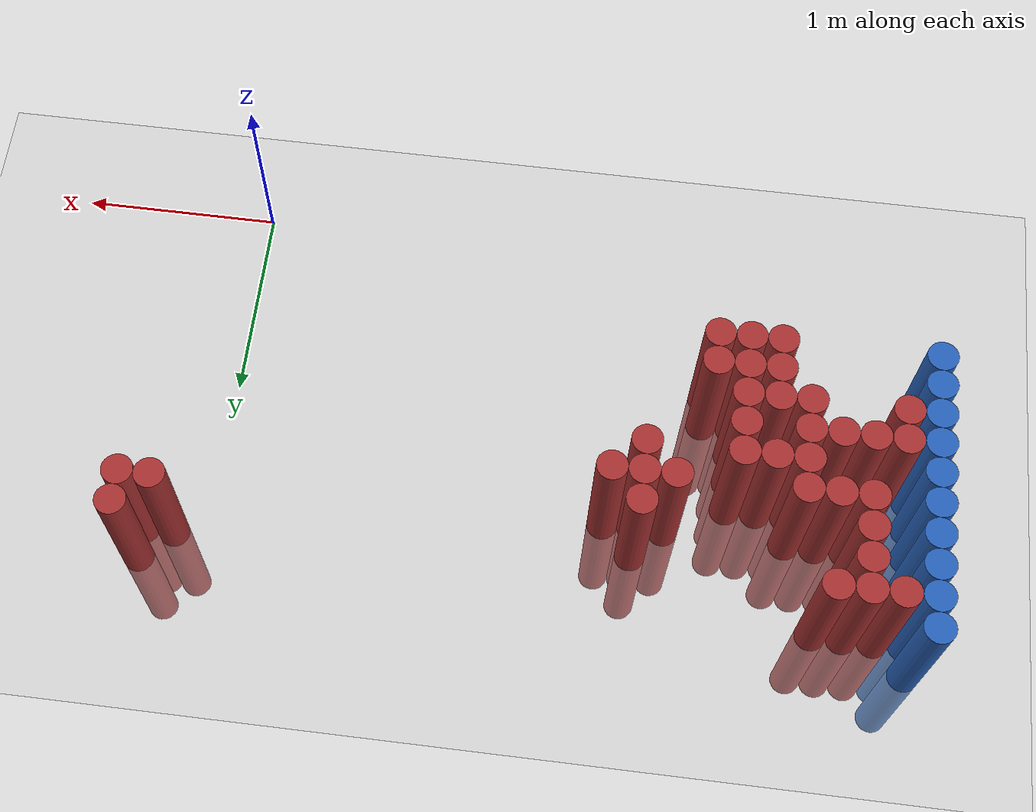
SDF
<sdf version="1.6">
 <world name="default">
  <model name="ground_plane">
   <static>1</static>
   <link name="link">
    <collision name="collision">
     <geometry><plane><normal>0 0 1</normal><size>100 100</size></plane></geometry>
     <surface><friction><ode><mu>100</mu><mu2>50</mu2></ode></friction></surface>
    </collision>
    <visual name="visual">
     <cast_shadows>0</cast_shadows>
     <geometry><plane><normal>0 0 1</normal><size>100 100</size></plane></geometry>
     <material>
      <script><uri>file://media/materials/scripts/gazebo.material</uri><name>Gazebo/Grey</name></script>
     </material>
    </visual>
   </link>
  </model>
  <model name="unit_cylinder_125">
   <static>1</static>
   <pose>-3.425000 0.775000 0.000000 0.000000 0.000000 0.000000</pose>
   <link name="link">
    <inertial>
     <mass>1</mass>
     <inertia><ixx>0.145833</ixx><ixy>0</ixy><ixz>0</ixz><iyy>0.145833</iyy><iyz>0</iyz><izz>0.125</izz></inertia>
    </inertial>
    <collision name="collision">
     <geometry><cylinder><radius>0.075000</radius><length>1.5</length></cylinder></geometry>
    </collision>
    <visual name="visual">
     <geometry><cylinder><radius>0.075000</radius><length>1.5</length></cylinder></geometry>
     <material>
      <ambient>0.152000 0.379000 0.720000 1</ambient>
      <diffuse>0.152000 0.379000 0.720000 1</diffuse>
     </material>
     <material>
      <script><name>Gazebo/Grey</name><uri>file://media/materials/scripts/gazebo.material</uri></script>
     </material>
    </visual>
   </link>
  </model>
  <model name="unit_cylinder_127">
   <static>1</static>
   <pose>-3.425000 0.925000 0.000000 0.000000 0.000000 0.000000</pose>
   <link name="link">
    <inertial>
     <mass>1</mass>
     <inertia><ixx>0.145833</ixx><ixy>0</ixy><ixz>0</ixz><iyy>0.145833</iyy><iyz>0</iyz><izz>0.125</izz></inertia>
    </inertial>
    <collision name="collision">
     <geometry><cylinder><radius>0.075000</radius><length>1.5</length></cylinder></geometry>
    </collision>
    <visual name="visual">
     <geometry><cylinder><radius>0.075000</radius><length>1.5</length></cylinder></geometry>
     <material>
      <ambient>0.152000 0.379000 0.720000 1</ambient>
      <diffuse>0.152000 0.379000 0.720000 1</diffuse>
     </material>
     <material>
      <script><name>Gazebo/Grey</name><uri>file://media/materials/scripts/gazebo.material</uri></script>
     </material>
    </visual>
   </link>
  </model>
  <model name="unit_cylinder_129">
   <static>1</static>
   <pose>-3.425000 1.075000 0.000000 0.000000 0.000000 0.000000</pose>
   <link name="link">
    <inertial>
     <mass>1</mass>
     <inertia><ixx>0.145833</ixx><ixy>0</ixy><ixz>0</ixz><iyy>0.145833</iyy><iyz>0</iyz><izz>0.125</izz></inertia>
    </inertial>
    <collision name="collision">
     <geometry><cylinder><radius>0.075000</radius><length>1.5</length></cylinder></geometry>
    </collision>
    <visual name="visual">
     <geometry><cylinder><radius>0.075000</radius><length>1.5</length></cylinder></geometry>
     <material>
      <ambient>0.152000 0.379000 0.720000 1</ambient>
      <diffuse>0.152000 0.379000 0.720000 1</diffuse>
     </material>
     <material>
      <script><name>Gazebo/Grey</name><uri>file://media/materials/scripts/gazebo.material</uri></script>
     </material>
    </visual>
   </link>
  </model>
  <model name="unit_cylinder_131">
   <static>1</static>
   <pose>-3.425000 1.225000 0.000000 0.000000 0.000000 0.000000</pose>
   <link name="link">
    <inertial>
     <mass>1</mass>
     <inertia><ixx>0.145833</ixx><ixy>0</ixy><ixz>0</ixz><iyy>0.145833</iyy><iyz>0</iyz><izz>0.125</izz></inertia>
    </inertial>
    <collision name="collision">
     <geometry><cylinder><radius>0.075000</radius><length>1.5</length></cylinder></geometry>
    </collision>
    <visual name="visual">
     <geometry><cylinder><radius>0.075000</radius><length>1.5</length></cylinder></geometry>
     <material>
      <ambient>0.152000 0.379000 0.720000 1</ambient>
      <diffuse>0.152000 0.379000 0.720000 1</diffuse>
     </material>
     <material>
      <script><name>Gazebo/Grey</name><uri>file://media/materials/scripts/gazebo.material</uri></script>
     </material>
    </visual>
   </link>
  </model>
  <model name="unit_cylinder_133">
   <static>1</static>
   <pose>-3.425000 1.375000 0.000000 0.000000 0.000000 0.000000</pose>
   <link name="link">
    <inertial>
     <mass>1</mass>
     <inertia><ixx>0.145833</ixx><ixy>0</ixy><ixz>0</ixz><iyy>0.145833</iyy><iyz>0</iyz><izz>0.125</izz></inertia>
    </inertial>
    <collision name="collision">
     <geometry><cylinder><radius>0.075000</radius><length>1.5</length></cylinder></geometry>
    </collision>
    <visual name="visual">
     <geometry><cylinder><radius>0.075000</radius><length>1.5</length></cylinder></geometry>
     <material>
      <ambient>0.152000 0.379000 0.720000 1</ambient>
      <diffuse>0.152000 0.379000 0.720000 1</diffuse>
     </material>
     <material>
      <script><name>Gazebo/Grey</name><uri>file://media/materials/scripts/gazebo.material</uri></script>
     </material>
    </visual>
   </link>
  </model>
  <model name="unit_cylinder_135">
   <static>1</static>
   <pose>-3.425000 1.525000 0.000000 0.000000 0.000000 0.000000</pose>
   <link name="link">
    <inertial>
     <mass>1</mass>
     <inertia><ixx>0.145833</ixx><ixy>0</ixy><ixz>0</ixz><iyy>0.145833</iyy><iyz>0</iyz><izz>0.125</izz></inertia>
    </inertial>
    <collision name="collision">
     <geometry><cylinder><radius>0.075000</radius><length>1.5</length></cylinder></geometry>
    </collision>
    <visual name="visual">
     <geometry><cylinder><radius>0.075000</radius><length>1.5</length></cylinder></geometry>
     <material>
      <ambient>0.152000 0.379000 0.720000 1</ambient>
      <diffuse>0.152000 0.379000 0.720000 1</diffuse>
     </material>
     <material>
      <script><name>Gazebo/Grey</name><uri>file://media/materials/scripts/gazebo.material</uri></script>
     </material>
    </visual>
   </link>
  </model>
  <model name="unit_cylinder_137">
   <static>1</static>
   <pose>-3.425000 1.675000 0.000000 0.000000 0.000000 0.000000</pose>
   <link name="link">
    <inertial>
     <mass>1</mass>
     <inertia><ixx>0.145833</ixx><ixy>0</ixy><ixz>0</ixz><iyy>0.145833</iyy><iyz>0</iyz><izz>0.125</izz></inertia>
    </inertial>
    <collision name="collision">
     <geometry><cylinder><radius>0.075000</radius><length>1.5</length></cylinder></geometry>
    </collision>
    <visual name="visual">
     <geometry><cylinder><radius>0.075000</radius><length>1.5</length></cylinder></geometry>
     <material>
      <ambient>0.152000 0.379000 0.720000 1</ambient>
      <diffuse>0.152000 0.379000 0.720000 1</diffuse>
     </material>
     <material>
      <script><name>Gazebo/Grey</name><uri>file://media/materials/scripts/gazebo.material</uri></script>
     </material>
    </visual>
   </link>
  </model>
  <model name="unit_cylinder_139">
   <static>1</static>
   <pose>-3.425000 1.825000 0.000000 0.000000 0.000000 0.000000</pose>
   <link name="link">
    <inertial>
     <mass>1</mass>
     <inertia><ixx>0.145833</ixx><ixy>0</ixy><ixz>0</ixz><iyy>0.145833</iyy><iyz>0</iyz><izz>0.125</izz></inertia>
    </inertial>
    <collision name="collision">
     <geometry><cylinder><radius>0.075000</radius><length>1.5</length></cylinder></geometry>
    </collision>
    <visual name="visual">
     <geometry><cylinder><radius>0.075000</radius><length>1.5</length></cylinder></geometry>
     <material>
      <ambient>0.152000 0.379000 0.720000 1</ambient>
      <diffuse>0.152000 0.379000 0.720000 1</diffuse>
     </material>
     <material>
      <script><name>Gazebo/Grey</name><uri>file://media/materials/scripts/gazebo.material</uri></script>
     </material>
    </visual>
   </link>
  </model>
  <model name="unit_cylinder_141">
   <static>1</static>
   <pose>-3.425000 1.975000 0.000000 0.000000 0.000000 0.000000</pose>
   <link name="link">
    <inertial>
     <mass>1</mass>
     <inertia><ixx>0.145833</ixx><ixy>0</ixy><ixz>0</ixz><iyy>0.145833</iyy><iyz>0</iyz><izz>0.125</izz></inertia>
    </inertial>
    <collision name="collision">
     <geometry><cylinder><radius>0.075000</radius><length>1.5</length></cylinder></geometry>
    </collision>
    <visual name="visual">
     <geometry><cylinder><radius>0.075000</radius><length>1.5</length></cylinder></geometry>
     <material>
      <ambient>0.152000 0.379000 0.720000 1</ambient>
      <diffuse>0.152000 0.379000 0.720000 1</diffuse>
     </material>
     <material>
      <script><name>Gazebo/Grey</name><uri>file://media/materials/scripts/gazebo.material</uri></script>
     </material>
    </visual>
   </link>
  </model>
  <model name="unit_cylinder_143">
   <static>1</static>
   <pose>-3.425000 2.125000 0.000000 0.000000 0.000000 0.000000</pose>
   <link name="link">
    <inertial>
     <mass>1</mass>
     <inertia><ixx>0.145833</ixx><ixy>0</ixy><ixz>0</ixz><iyy>0.145833</iyy><iyz>0</iyz><izz>0.125</izz></inertia>
    </inertial>
    <collision name="collision">
     <geometry><cylinder><radius>0.075000</radius><length>1.5</length></cylinder></geometry>
    </collision>
    <visual name="visual">
     <geometry><cylinder><radius>0.075000</radius><length>1.5</length></cylinder></geometry>
     <material>
      <ambient>0.152000 0.379000 0.720000 1</ambient>
      <diffuse>0.152000 0.379000 0.720000 1</diffuse>
     </material>
     <material>
      <script><name>Gazebo/Grey</name><uri>file://media/materials/scripts/gazebo.material</uri></script>
     </material>
    </visual>
   </link>
  </model>
  <model name="unit_cylinder_226">
   <static>1</static>
   <pose>-3.425000 0.775000 0.000000 0.000000 0.000000 0.000000</pose>
   <link name="link">
    <inertial>
     <mass>1</mass>
     <inertia><ixx>0.145833</ixx><ixy>0</ixy><ixz>0</ixz><iyy>0.145833</iyy><iyz>0</iyz><izz>0.125</izz></inertia>
    </inertial>
    <collision name="collision">
     <geometry><cylinder><radius>0.075000</radius><length>1.5</length></cylinder></geometry>
    </collision>
    <visual name="visual">
     <geometry><cylinder><radius>0.075000</radius><length>1.5</length></cylinder></geometry>
     <material>
      <ambient>0.152000 0.379000 0.720000 1</ambient>
      <diffuse>0.152000 0.379000 0.720000 1</diffuse>
     </material>
     <material>
      <script><name>Gazebo/Grey</name><uri>file://media/materials/scripts/gazebo.material</uri></script>
     </material>
    </visual>
   </link>
  </model>
  <model name="unit_cylinder_227">
   <static>1</static>
   <pose>-3.425000 0.925000 0.000000 0.000000 0.000000 0.000000</pose>
   <link name="link">
    <inertial>
     <mass>1</mass>
     <inertia><ixx>0.145833</ixx><ixy>0</ixy><ixz>0</ixz><iyy>0.145833</iyy><iyz>0</iyz><izz>0.125</izz></inertia>
    </inertial>
    <collision name="collision">
     <geometry><cylinder><radius>0.075000</radius><length>1.5</length></cylinder></geometry>
    </collision>
    <visual name="visual">
     <geometry><cylinder><radius>0.075000</radius><length>1.5</length></cylinder></geometry>
     <material>
      <ambient>0.152000 0.379000 0.720000 1</ambient>
      <diffuse>0.152000 0.379000 0.720000 1</diffuse>
     </material>
     <material>
      <script><name>Gazebo/Grey</name><uri>file://media/materials/scripts/gazebo.material</uri></script>
     </material>
    </visual>
   </link>
  </model>
  <model name="unit_cylinder_228">
   <static>1</static>
   <pose>-3.425000 1.075000 0.000000 0.000000 0.000000 0.000000</pose>
   <link name="link">
    <inertial>
     <mass>1</mass>
     <inertia><ixx>0.145833</ixx><ixy>0</ixy><ixz>0</ixz><iyy>0.145833</iyy><iyz>0</iyz><izz>0.125</izz></inertia>
    </inertial>
    <collision name="collision">
     <geometry><cylinder><radius>0.075000</radius><length>1.5</length></cylinder></geometry>
    </collision>
    <visual name="visual">
     <geometry><cylinder><radius>0.075000</radius><length>1.5</length></cylinder></geometry>
     <material>
      <ambient>0.152000 0.379000 0.720000 1</ambient>
      <diffuse>0.152000 0.379000 0.720000 1</diffuse>
     </material>
     <material>
      <script><name>Gazebo/Grey</name><uri>file://media/materials/scripts/gazebo.material</uri></script>
     </material>
    </visual>
   </link>
  </model>
  <model name="unit_cylinder_229">
   <static>1</static>
   <pose>-3.425000 1.225000 0.000000 0.000000 0.000000 0.000000</pose>
   <link name="link">
    <inertial>
     <mass>1</mass>
     <inertia><ixx>0.145833</ixx><ixy>0</ixy><ixz>0</ixz><iyy>0.145833</iyy><iyz>0</iyz><izz>0.125</izz></inertia>
    </inertial>
    <collision name="collision">
     <geometry><cylinder><radius>0.075000</radius><length>1.5</length></cylinder></geometry>
    </collision>
    <visual name="visual">
     <geometry><cylinder><radius>0.075000</radius><length>1.5</length></cylinder></geometry>
     <material>
      <ambient>0.152000 0.379000 0.720000 1</ambient>
      <diffuse>0.152000 0.379000 0.720000 1</diffuse>
     </material>
     <material>
      <script><name>Gazebo/Grey</name><uri>file://media/materials/scripts/gazebo.material</uri></script>
     </material>
    </visual>
   </link>
  </model>
  <model name="unit_cylinder_230">
   <static>1</static>
   <pose>-3.425000 1.375000 0.000000 0.000000 0.000000 0.000000</pose>
   <link name="link">
    <inertial>
     <mass>1</mass>
     <inertia><ixx>0.145833</ixx><ixy>0</ixy><ixz>0</ixz><iyy>0.145833</iyy><iyz>0</iyz><izz>0.125</izz></inertia>
    </inertial>
    <collision name="collision">
     <geometry><cylinder><radius>0.075000</radius><length>1.5</length></cylinder></geometry>
    </collision>
    <visual name="visual">
     <geometry><cylinder><radius>0.075000</radius><length>1.5</length></cylinder></geometry>
     <material>
      <ambient>0.152000 0.379000 0.720000 1</ambient>
      <diffuse>0.152000 0.379000 0.720000 1</diffuse>
     </material>
     <material>
      <script><name>Gazebo/Grey</name><uri>file://media/materials/scripts/gazebo.material</uri></script>
     </material>
    </visual>
   </link>
  </model>
  <model name="unit_cylinder_231">
   <static>1</static>
   <pose>-3.425000 1.525000 0.000000 0.000000 0.000000 0.000000</pose>
   <link name="link">
    <inertial>
     <mass>1</mass>
     <inertia><ixx>0.145833</ixx><ixy>0</ixy><ixz>0</ixz><iyy>0.145833</iyy><iyz>0</iyz><izz>0.125</izz></inertia>
    </inertial>
    <collision name="collision">
     <geometry><cylinder><radius>0.075000</radius><length>1.5</length></cylinder></geometry>
    </collision>
    <visual name="visual">
     <geometry><cylinder><radius>0.075000</radius><length>1.5</length></cylinder></geometry>
     <material>
      <ambient>0.152000 0.379000 0.720000 1</ambient>
      <diffuse>0.152000 0.379000 0.720000 1</diffuse>
     </material>
     <material>
      <script><name>Gazebo/Grey</name><uri>file://media/materials/scripts/gazebo.material</uri></script>
     </material>
    </visual>
   </link>
  </model>
  <model name="unit_cylinder_232">
   <static>1</static>
   <pose>-3.425000 1.675000 0.000000 0.000000 0.000000 0.000000</pose>
   <link name="link">
    <inertial>
     <mass>1</mass>
     <inertia><ixx>0.145833</ixx><ixy>0</ixy><ixz>0</ixz><iyy>0.145833</iyy><iyz>0</iyz><izz>0.125</izz></inertia>
    </inertial>
    <collision name="collision">
     <geometry><cylinder><radius>0.075000</radius><length>1.5</length></cylinder></geometry>
    </collision>
    <visual name="visual">
     <geometry><cylinder><radius>0.075000</radius><length>1.5</length></cylinder></geometry>
     <material>
      <ambient>0.152000 0.379000 0.720000 1</ambient>
      <diffuse>0.152000 0.379000 0.720000 1</diffuse>
     </material>
     <material>
      <script><name>Gazebo/Grey</name><uri>file://media/materials/scripts/gazebo.material</uri></script>
     </material>
    </visual>
   </link>
  </model>
  <model name="unit_cylinder_233">
   <static>1</static>
   <pose>-3.425000 1.825000 0.000000 0.000000 0.000000 0.000000</pose>
   <link name="link">
    <inertial>
     <mass>1</mass>
     <inertia><ixx>0.145833</ixx><ixy>0</ixy><ixz>0</ixz><iyy>0.145833</iyy><iyz>0</iyz><izz>0.125</izz></inertia>
    </inertial>
    <collision name="collision">
     <geometry><cylinder><radius>0.075000</radius><length>1.5</length></cylinder></geometry>
    </collision>
    <visual name="visual">
     <geometry><cylinder><radius>0.075000</radius><length>1.5</length></cylinder></geometry>
     <material>
      <ambient>0.152000 0.379000 0.720000 1</ambient>
      <diffuse>0.152000 0.379000 0.720000 1</diffuse>
     </material>
     <material>
      <script><name>Gazebo/Grey</name><uri>file://media/materials/scripts/gazebo.material</uri></script>
     </material>
    </visual>
   </link>
  </model>
  <model name="unit_cylinder_234">
   <static>1</static>
   <pose>-3.425000 1.975000 0.000000 0.000000 0.000000 0.000000</pose>
   <link name="link">
    <inertial>
     <mass>1</mass>
     <inertia><ixx>0.145833</ixx><ixy>0</ixy><ixz>0</ixz><iyy>0.145833</iyy><iyz>0</iyz><izz>0.125</izz></inertia>
    </inertial>
    <collision name="collision">
     <geometry><cylinder><radius>0.075000</radius><length>1.5</length></cylinder></geometry>
    </collision>
    <visual name="visual">
     <geometry><cylinder><radius>0.075000</radius><length>1.5</length></cylinder></geometry>
     <material>
      <ambient>0.152000 0.379000 0.720000 1</ambient>
      <diffuse>0.152000 0.379000 0.720000 1</diffuse>
     </material>
     <material>
      <script><name>Gazebo/Grey</name><uri>file://media/materials/scripts/gazebo.material</uri></script>
     </material>
    </visual>
   </link>
  </model>
  <model name="unit_cylinder_266">
   <static>1</static>
   <pose>-3.275000 1.075000 0.000000 0.000000 0.000000 0.000000</pose>
   <link name="link">
    <inertial>
     <mass>1</mass>
     <inertia><ixx>0.145833</ixx><ixy>0</ixy><ixz>0</ixz><iyy>0.145833</iyy><iyz>0</iyz><izz>0.125</izz></inertia>
    </inertial>
    <collision name="collision">
     <geometry><cylinder><radius>0.075000</radius><length>1.5</length></cylinder></geometry>
    </collision>
    <visual name="visual">
     <geometry><cylinder><radius>0.075000</radius><length>1.5</length></cylinder></geometry>
     <material>
      <ambient>0.648000 0.192000 0.192000 1</ambient>
      <diffuse>0.648000 0.192000 0.192000 1</diffuse>
     </material>
     <material>
      <script><name>Gazebo/Grey</name><uri>file://media/materials/scripts/gazebo.material</uri></script>
     </material>
    </visual>
   </link>
  </model>
  <model name="unit_cylinder_267">
   <static>1</static>
   <pose>-3.275000 1.225000 0.000000 0.000000 0.000000 0.000000</pose>
   <link name="link">
    <inertial>
     <mass>1</mass>
     <inertia><ixx>0.145833</ixx><ixy>0</ixy><ixz>0</ixz><iyy>0.145833</iyy><iyz>0</iyz><izz>0.125</izz></inertia>
    </inertial>
    <collision name="collision">
     <geometry><cylinder><radius>0.075000</radius><length>1.5</length></cylinder></geometry>
    </collision>
    <visual name="visual">
     <geometry><cylinder><radius>0.075000</radius><length>1.5</length></cylinder></geometry>
     <material>
      <ambient>0.648000 0.192000 0.192000 1</ambient>
      <diffuse>0.648000 0.192000 0.192000 1</diffuse>
     </material>
     <material>
      <script><name>Gazebo/Grey</name><uri>file://media/materials/scripts/gazebo.material</uri></script>
     </material>
    </visual>
   </link>
  </model>
  <model name="unit_cylinder_268">
   <static>1</static>
   <pose>-3.275000 1.975000 0.000000 0.000000 0.000000 0.000000</pose>
   <link name="link">
    <inertial>
     <mass>1</mass>
     <inertia><ixx>0.145833</ixx><ixy>0</ixy><ixz>0</ixz><iyy>0.145833</iyy><iyz>0</iyz><izz>0.125</izz></inertia>
    </inertial>
    <collision name="collision">
     <geometry><cylinder><radius>0.075000</radius><length>1.5</length></cylinder></geometry>
    </collision>
    <visual name="visual">
     <geometry><cylinder><radius>0.075000</radius><length>1.5</length></cylinder></geometry>
     <material>
      <ambient>0.648000 0.192000 0.192000 1</ambient>
      <diffuse>0.648000 0.192000 0.192000 1</diffuse>
     </material>
     <material>
      <script><name>Gazebo/Grey</name><uri>file://media/materials/scripts/gazebo.material</uri></script>
     </material>
    </visual>
   </link>
  </model>
  <model name="unit_cylinder_278">
   <static>1</static>
   <pose>-3.125000 1.225000 0.000000 0.000000 0.000000 0.000000</pose>
   <link name="link">
    <inertial>
     <mass>1</mass>
     <inertia><ixx>0.145833</ixx><ixy>0</ixy><ixz>0</ixz><iyy>0.145833</iyy><iyz>0</iyz><izz>0.125</izz></inertia>
    </inertial>
    <collision name="collision">
     <geometry><cylinder><radius>0.075000</radius><length>1.5</length></cylinder></geometry>
    </collision>
    <visual name="visual">
     <geometry><cylinder><radius>0.075000</radius><length>1.5</length></cylinder></geometry>
     <material>
      <ambient>0.648000 0.192000 0.192000 1</ambient>
      <diffuse>0.648000 0.192000 0.192000 1</diffuse>
     </material>
     <material>
      <script><name>Gazebo/Grey</name><uri>file://media/materials/scripts/gazebo.material</uri></script>
     </material>
    </visual>
   </link>
  </model>
  <model name="unit_cylinder_279">
   <static>1</static>
   <pose>-3.125000 1.525000 0.000000 0.000000 0.000000 0.000000</pose>
   <link name="link">
    <inertial>
     <mass>1</mass>
     <inertia><ixx>0.145833</ixx><ixy>0</ixy><ixz>0</ixz><iyy>0.145833</iyy><iyz>0</iyz><izz>0.125</izz></inertia>
    </inertial>
    <collision name="collision">
     <geometry><cylinder><radius>0.075000</radius><length>1.5</length></cylinder></geometry>
    </collision>
    <visual name="visual">
     <geometry><cylinder><radius>0.075000</radius><length>1.5</length></cylinder></geometry>
     <material>
      <ambient>0.648000 0.192000 0.192000 1</ambient>
      <diffuse>0.648000 0.192000 0.192000 1</diffuse>
     </material>
     <material>
      <script><name>Gazebo/Grey</name><uri>file://media/materials/scripts/gazebo.material</uri></script>
     </material>
    </visual>
   </link>
  </model>
  <model name="unit_cylinder_280">
   <static>1</static>
   <pose>-3.125000 1.675000 0.000000 0.000000 0.000000 0.000000</pose>
   <link name="link">
    <inertial>
     <mass>1</mass>
     <inertia><ixx>0.145833</ixx><ixy>0</ixy><ixz>0</ixz><iyy>0.145833</iyy><iyz>0</iyz><izz>0.125</izz></inertia>
    </inertial>
    <collision name="collision">
     <geometry><cylinder><radius>0.075000</radius><length>1.5</length></cylinder></geometry>
    </collision>
    <visual name="visual">
     <geometry><cylinder><radius>0.075000</radius><length>1.5</length></cylinder></geometry>
     <material>
      <ambient>0.648000 0.192000 0.192000 1</ambient>
      <diffuse>0.648000 0.192000 0.192000 1</diffuse>
     </material>
     <material>
      <script><name>Gazebo/Grey</name><uri>file://media/materials/scripts/gazebo.material</uri></script>
     </material>
    </visual>
   </link>
  </model>
  <model name="unit_cylinder_281">
   <static>1</static>
   <pose>-3.125000 1.825000 0.000000 0.000000 0.000000 0.000000</pose>
   <link name="link">
    <inertial>
     <mass>1</mass>
     <inertia><ixx>0.145833</ixx><ixy>0</ixy><ixz>0</ixz><iyy>0.145833</iyy><iyz>0</iyz><izz>0.125</izz></inertia>
    </inertial>
    <collision name="collision">
     <geometry><cylinder><radius>0.075000</radius><length>1.5</length></cylinder></geometry>
    </collision>
    <visual name="visual">
     <geometry><cylinder><radius>0.075000</radius><length>1.5</length></cylinder></geometry>
     <material>
      <ambient>0.648000 0.192000 0.192000 1</ambient>
      <diffuse>0.648000 0.192000 0.192000 1</diffuse>
     </material>
     <material>
      <script><name>Gazebo/Grey</name><uri>file://media/materials/scripts/gazebo.material</uri></script>
     </material>
    </visual>
   </link>
  </model>
  <model name="unit_cylinder_282">
   <static>1</static>
   <pose>-3.125000 1.975000 0.000000 0.000000 0.000000 0.000000</pose>
   <link name="link">
    <inertial>
     <mass>1</mass>
     <inertia><ixx>0.145833</ixx><ixy>0</ixy><ixz>0</ixz><iyy>0.145833</iyy><iyz>0</iyz><izz>0.125</izz></inertia>
    </inertial>
    <collision name="collision">
     <geometry><cylinder><radius>0.075000</radius><length>1.5</length></cylinder></geometry>
    </collision>
    <visual name="visual">
     <geometry><cylinder><radius>0.075000</radius><length>1.5</length></cylinder></geometry>
     <material>
      <ambient>0.648000 0.192000 0.192000 1</ambient>
      <diffuse>0.648000 0.192000 0.192000 1</diffuse>
     </material>
     <material>
      <script><name>Gazebo/Grey</name><uri>file://media/materials/scripts/gazebo.material</uri></script>
     </material>
    </visual>
   </link>
  </model>
  <model name="unit_cylinder_284">
   <static>1</static>
   <pose>-2.975000 1.225000 0.000000 0.000000 0.000000 0.000000</pose>
   <link name="link">
    <inertial>
     <mass>1</mass>
     <inertia><ixx>0.145833</ixx><ixy>0</ixy><ixz>0</ixz><iyy>0.145833</iyy><iyz>0</iyz><izz>0.125</izz></inertia>
    </inertial>
    <collision name="collision">
     <geometry><cylinder><radius>0.075000</radius><length>1.5</length></cylinder></geometry>
    </collision>
    <visual name="visual">
     <geometry><cylinder><radius>0.075000</radius><length>1.5</length></cylinder></geometry>
     <material>
      <ambient>0.648000 0.192000 0.192000 1</ambient>
      <diffuse>0.648000 0.192000 0.192000 1</diffuse>
     </material>
     <material>
      <script><name>Gazebo/Grey</name><uri>file://media/materials/scripts/gazebo.material</uri></script>
     </material>
    </visual>
   </link>
  </model>
  <model name="unit_cylinder_285">
   <static>1</static>
   <pose>-2.975000 1.525000 0.000000 0.000000 0.000000 0.000000</pose>
   <link name="link">
    <inertial>
     <mass>1</mass>
     <inertia><ixx>0.145833</ixx><ixy>0</ixy><ixz>0</ixz><iyy>0.145833</iyy><iyz>0</iyz><izz>0.125</izz></inertia>
    </inertial>
    <collision name="collision">
     <geometry><cylinder><radius>0.075000</radius><length>1.5</length></cylinder></geometry>
    </collision>
    <visual name="visual">
     <geometry><cylinder><radius>0.075000</radius><length>1.5</length></cylinder></geometry>
     <material>
      <ambient>0.648000 0.192000 0.192000 1</ambient>
      <diffuse>0.648000 0.192000 0.192000 1</diffuse>
     </material>
     <material>
      <script><name>Gazebo/Grey</name><uri>file://media/materials/scripts/gazebo.material</uri></script>
     </material>
    </visual>
   </link>
  </model>
  <model name="unit_cylinder_286">
   <static>1</static>
   <pose>-2.975000 1.975000 0.000000 0.000000 0.000000 0.000000</pose>
   <link name="link">
    <inertial>
     <mass>1</mass>
     <inertia><ixx>0.145833</ixx><ixy>0</ixy><ixz>0</ixz><iyy>0.145833</iyy><iyz>0</iyz><izz>0.125</izz></inertia>
    </inertial>
    <collision name="collision">
     <geometry><cylinder><radius>0.075000</radius><length>1.5</length></cylinder></geometry>
    </collision>
    <visual name="visual">
     <geometry><cylinder><radius>0.075000</radius><length>1.5</length></cylinder></geometry>
     <material>
      <ambient>0.648000 0.192000 0.192000 1</ambient>
      <diffuse>0.648000 0.192000 0.192000 1</diffuse>
     </material>
     <material>
      <script><name>Gazebo/Grey</name><uri>file://media/materials/scripts/gazebo.material</uri></script>
     </material>
    </visual>
   </link>
  </model>
  <model name="unit_cylinder_288">
   <static>1</static>
   <pose>-2.825000 1.075000 0.000000 0.000000 0.000000 0.000000</pose>
   <link name="link">
    <inertial>
     <mass>1</mass>
     <inertia><ixx>0.145833</ixx><ixy>0</ixy><ixz>0</ixz><iyy>0.145833</iyy><iyz>0</iyz><izz>0.125</izz></inertia>
    </inertial>
    <collision name="collision">
     <geometry><cylinder><radius>0.075000</radius><length>1.5</length></cylinder></geometry>
    </collision>
    <visual name="visual">
     <geometry><cylinder><radius>0.075000</radius><length>1.5</length></cylinder></geometry>
     <material>
      <ambient>0.648000 0.192000 0.192000 1</ambient>
      <diffuse>0.648000 0.192000 0.192000 1</diffuse>
     </material>
     <material>
      <script><name>Gazebo/Grey</name><uri>file://media/materials/scripts/gazebo.material</uri></script>
     </material>
    </visual>
   </link>
  </model>
  <model name="unit_cylinder_289">
   <static>1</static>
   <pose>-2.825000 1.225000 0.000000 0.000000 0.000000 0.000000</pose>
   <link name="link">
    <inertial>
     <mass>1</mass>
     <inertia><ixx>0.145833</ixx><ixy>0</ixy><ixz>0</ixz><iyy>0.145833</iyy><iyz>0</iyz><izz>0.125</izz></inertia>
    </inertial>
    <collision name="collision">
     <geometry><cylinder><radius>0.075000</radius><length>1.5</length></cylinder></geometry>
    </collision>
    <visual name="visual">
     <geometry><cylinder><radius>0.075000</radius><length>1.5</length></cylinder></geometry>
     <material>
      <ambient>0.648000 0.192000 0.192000 1</ambient>
      <diffuse>0.648000 0.192000 0.192000 1</diffuse>
     </material>
     <material>
      <script><name>Gazebo/Grey</name><uri>file://media/materials/scripts/gazebo.material</uri></script>
     </material>
    </visual>
   </link>
  </model>
  <model name="unit_cylinder_290">
   <static>1</static>
   <pose>-2.825000 1.375000 0.000000 0.000000 0.000000 0.000000</pose>
   <link name="link">
    <inertial>
     <mass>1</mass>
     <inertia><ixx>0.145833</ixx><ixy>0</ixy><ixz>0</ixz><iyy>0.145833</iyy><iyz>0</iyz><izz>0.125</izz></inertia>
    </inertial>
    <collision name="collision">
     <geometry><cylinder><radius>0.075000</radius><length>1.5</length></cylinder></geometry>
    </collision>
    <visual name="visual">
     <geometry><cylinder><radius>0.075000</radius><length>1.5</length></cylinder></geometry>
     <material>
      <ambient>0.648000 0.192000 0.192000 1</ambient>
      <diffuse>0.648000 0.192000 0.192000 1</diffuse>
     </material>
     <material>
      <script><name>Gazebo/Grey</name><uri>file://media/materials/scripts/gazebo.material</uri></script>
     </material>
    </visual>
   </link>
  </model>
  <model name="unit_cylinder_291">
   <static>1</static>
   <pose>-2.825000 1.525000 0.000000 0.000000 0.000000 0.000000</pose>
   <link name="link">
    <inertial>
     <mass>1</mass>
     <inertia><ixx>0.145833</ixx><ixy>0</ixy><ixz>0</ixz><iyy>0.145833</iyy><iyz>0</iyz><izz>0.125</izz></inertia>
    </inertial>
    <collision name="collision">
     <geometry><cylinder><radius>0.075000</radius><length>1.5</length></cylinder></geometry>
    </collision>
    <visual name="visual">
     <geometry><cylinder><radius>0.075000</radius><length>1.5</length></cylinder></geometry>
     <material>
      <ambient>0.648000 0.192000 0.192000 1</ambient>
      <diffuse>0.648000 0.192000 0.192000 1</diffuse>
     </material>
     <material>
      <script><name>Gazebo/Grey</name><uri>file://media/materials/scripts/gazebo.material</uri></script>
     </material>
    </visual>
   </link>
  </model>
  <model name="unit_cylinder_295">
   <static>1</static>
   <pose>-2.675000 0.775000 0.000000 0.000000 0.000000 0.000000</pose>
   <link name="link">
    <inertial>
     <mass>1</mass>
     <inertia><ixx>0.145833</ixx><ixy>0</ixy><ixz>0</ixz><iyy>0.145833</iyy><iyz>0</iyz><izz>0.125</izz></inertia>
    </inertial>
    <collision name="collision">
     <geometry><cylinder><radius>0.075000</radius><length>1.5</length></cylinder></geometry>
    </collision>
    <visual name="visual">
     <geometry><cylinder><radius>0.075000</radius><length>1.5</length></cylinder></geometry>
     <material>
      <ambient>0.648000 0.192000 0.192000 1</ambient>
      <diffuse>0.648000 0.192000 0.192000 1</diffuse>
     </material>
     <material>
      <script><name>Gazebo/Grey</name><uri>file://media/materials/scripts/gazebo.material</uri></script>
     </material>
    </visual>
   </link>
  </model>
  <model name="unit_cylinder_296">
   <static>1</static>
   <pose>-2.675000 0.925000 0.000000 0.000000 0.000000 0.000000</pose>
   <link name="link">
    <inertial>
     <mass>1</mass>
     <inertia><ixx>0.145833</ixx><ixy>0</ixy><ixz>0</ixz><iyy>0.145833</iyy><iyz>0</iyz><izz>0.125</izz></inertia>
    </inertial>
    <collision name="collision">
     <geometry><cylinder><radius>0.075000</radius><length>1.5</length></cylinder></geometry>
    </collision>
    <visual name="visual">
     <geometry><cylinder><radius>0.075000</radius><length>1.5</length></cylinder></geometry>
     <material>
      <ambient>0.648000 0.192000 0.192000 1</ambient>
      <diffuse>0.648000 0.192000 0.192000 1</diffuse>
     </material>
     <material>
      <script><name>Gazebo/Grey</name><uri>file://media/materials/scripts/gazebo.material</uri></script>
     </material>
    </visual>
   </link>
  </model>
  <model name="unit_cylinder_297">
   <static>1</static>
   <pose>-2.675000 1.075000 0.000000 0.000000 0.000000 0.000000</pose>
   <link name="link">
    <inertial>
     <mass>1</mass>
     <inertia><ixx>0.145833</ixx><ixy>0</ixy><ixz>0</ixz><iyy>0.145833</iyy><iyz>0</iyz><izz>0.125</izz></inertia>
    </inertial>
    <collision name="collision">
     <geometry><cylinder><radius>0.075000</radius><length>1.5</length></cylinder></geometry>
    </collision>
    <visual name="visual">
     <geometry><cylinder><radius>0.075000</radius><length>1.5</length></cylinder></geometry>
     <material>
      <ambient>0.648000 0.192000 0.192000 1</ambient>
      <diffuse>0.648000 0.192000 0.192000 1</diffuse>
     </material>
     <material>
      <script><name>Gazebo/Grey</name><uri>file://media/materials/scripts/gazebo.material</uri></script>
     </material>
    </visual>
   </link>
  </model>
  <model name="unit_cylinder_298">
   <static>1</static>
   <pose>-2.675000 1.375000 0.000000 0.000000 0.000000 0.000000</pose>
   <link name="link">
    <inertial>
     <mass>1</mass>
     <inertia><ixx>0.145833</ixx><ixy>0</ixy><ixz>0</ixz><iyy>0.145833</iyy><iyz>0</iyz><izz>0.125</izz></inertia>
    </inertial>
    <collision name="collision">
     <geometry><cylinder><radius>0.075000</radius><length>1.5</length></cylinder></geometry>
    </collision>
    <visual name="visual">
     <geometry><cylinder><radius>0.075000</radius><length>1.5</length></cylinder></geometry>
     <material>
      <ambient>0.648000 0.192000 0.192000 1</ambient>
      <diffuse>0.648000 0.192000 0.192000 1</diffuse>
     </material>
     <material>
      <script><name>Gazebo/Grey</name><uri>file://media/materials/scripts/gazebo.material</uri></script>
     </material>
    </visual>
   </link>
  </model>
  <model name="unit_cylinder_308">
   <static>1</static>
   <pose>-2.525000 0.775000 0.000000 0.000000 0.000000 0.000000</pose>
   <link name="link">
    <inertial>
     <mass>1</mass>
     <inertia><ixx>0.145833</ixx><ixy>0</ixy><ixz>0</ixz><iyy>0.145833</iyy><iyz>0</iyz><izz>0.125</izz></inertia>
    </inertial>
    <collision name="collision">
     <geometry><cylinder><radius>0.075000</radius><length>1.5</length></cylinder></geometry>
    </collision>
    <visual name="visual">
     <geometry><cylinder><radius>0.075000</radius><length>1.5</length></cylinder></geometry>
     <material>
      <ambient>0.648000 0.192000 0.192000 1</ambient>
      <diffuse>0.648000 0.192000 0.192000 1</diffuse>
     </material>
     <material>
      <script><name>Gazebo/Grey</name><uri>file://media/materials/scripts/gazebo.material</uri></script>
     </material>
    </visual>
   </link>
  </model>
  <model name="unit_cylinder_309">
   <static>1</static>
   <pose>-2.525000 0.925000 0.000000 0.000000 0.000000 0.000000</pose>
   <link name="link">
    <inertial>
     <mass>1</mass>
     <inertia><ixx>0.145833</ixx><ixy>0</ixy><ixz>0</ixz><iyy>0.145833</iyy><iyz>0</iyz><izz>0.125</izz></inertia>
    </inertial>
    <collision name="collision">
     <geometry><cylinder><radius>0.075000</radius><length>1.5</length></cylinder></geometry>
    </collision>
    <visual name="visual">
     <geometry><cylinder><radius>0.075000</radius><length>1.5</length></cylinder></geometry>
     <material>
      <ambient>0.648000 0.192000 0.192000 1</ambient>
      <diffuse>0.648000 0.192000 0.192000 1</diffuse>
     </material>
     <material>
      <script><name>Gazebo/Grey</name><uri>file://media/materials/scripts/gazebo.material</uri></script>
     </material>
    </visual>
   </link>
  </model>
  <model name="unit_cylinder_310">
   <static>1</static>
   <pose>-2.525000 1.075000 0.000000 0.000000 0.000000 0.000000</pose>
   <link name="link">
    <inertial>
     <mass>1</mass>
     <inertia><ixx>0.145833</ixx><ixy>0</ixy><ixz>0</ixz><iyy>0.145833</iyy><iyz>0</iyz><izz>0.125</izz></inertia>
    </inertial>
    <collision name="collision">
     <geometry><cylinder><radius>0.075000</radius><length>1.5</length></cylinder></geometry>
    </collision>
    <visual name="visual">
     <geometry><cylinder><radius>0.075000</radius><length>1.5</length></cylinder></geometry>
     <material>
      <ambient>0.648000 0.192000 0.192000 1</ambient>
      <diffuse>0.648000 0.192000 0.192000 1</diffuse>
     </material>
     <material>
      <script><name>Gazebo/Grey</name><uri>file://media/materials/scripts/gazebo.material</uri></script>
     </material>
    </visual>
   </link>
  </model>
  <model name="unit_cylinder_311">
   <static>1</static>
   <pose>-2.525000 1.225000 0.000000 0.000000 0.000000 0.000000</pose>
   <link name="link">
    <inertial>
     <mass>1</mass>
     <inertia><ixx>0.145833</ixx><ixy>0</ixy><ixz>0</ixz><iyy>0.145833</iyy><iyz>0</iyz><izz>0.125</izz></inertia>
    </inertial>
    <collision name="collision">
     <geometry><cylinder><radius>0.075000</radius><length>1.5</length></cylinder></geometry>
    </collision>
    <visual name="visual">
     <geometry><cylinder><radius>0.075000</radius><length>1.5</length></cylinder></geometry>
     <material>
      <ambient>0.648000 0.192000 0.192000 1</ambient>
      <diffuse>0.648000 0.192000 0.192000 1</diffuse>
     </material>
     <material>
      <script><name>Gazebo/Grey</name><uri>file://media/materials/scripts/gazebo.material</uri></script>
     </material>
    </visual>
   </link>
  </model>
  <model name="unit_cylinder_312">
   <static>1</static>
   <pose>-2.525000 1.375000 0.000000 0.000000 0.000000 0.000000</pose>
   <link name="link">
    <inertial>
     <mass>1</mass>
     <inertia><ixx>0.145833</ixx><ixy>0</ixy><ixz>0</ixz><iyy>0.145833</iyy><iyz>0</iyz><izz>0.125</izz></inertia>
    </inertial>
    <collision name="collision">
     <geometry><cylinder><radius>0.075000</radius><length>1.5</length></cylinder></geometry>
    </collision>
    <visual name="visual">
     <geometry><cylinder><radius>0.075000</radius><length>1.5</length></cylinder></geometry>
     <material>
      <ambient>0.648000 0.192000 0.192000 1</ambient>
      <diffuse>0.648000 0.192000 0.192000 1</diffuse>
     </material>
     <material>
      <script><name>Gazebo/Grey</name><uri>file://media/materials/scripts/gazebo.material</uri></script>
     </material>
    </visual>
   </link>
  </model>
  <model name="unit_cylinder_322">
   <static>1</static>
   <pose>-2.375000 0.775000 0.000000 0.000000 0.000000 0.000000</pose>
   <link name="link">
    <inertial>
     <mass>1</mass>
     <inertia><ixx>0.145833</ixx><ixy>0</ixy><ixz>0</ixz><iyy>0.145833</iyy><iyz>0</iyz><izz>0.125</izz></inertia>
    </inertial>
    <collision name="collision">
     <geometry><cylinder><radius>0.075000</radius><length>1.5</length></cylinder></geometry>
    </collision>
    <visual name="visual">
     <geometry><cylinder><radius>0.075000</radius><length>1.5</length></cylinder></geometry>
     <material>
      <ambient>0.648000 0.192000 0.192000 1</ambient>
      <diffuse>0.648000 0.192000 0.192000 1</diffuse>
     </material>
     <material>
      <script><name>Gazebo/Grey</name><uri>file://media/materials/scripts/gazebo.material</uri></script>
     </material>
    </visual>
   </link>
  </model>
  <model name="unit_cylinder_323">
   <static>1</static>
   <pose>-2.375000 0.925000 0.000000 0.000000 0.000000 0.000000</pose>
   <link name="link">
    <inertial>
     <mass>1</mass>
     <inertia><ixx>0.145833</ixx><ixy>0</ixy><ixz>0</ixz><iyy>0.145833</iyy><iyz>0</iyz><izz>0.125</izz></inertia>
    </inertial>
    <collision name="collision">
     <geometry><cylinder><radius>0.075000</radius><length>1.5</length></cylinder></geometry>
    </collision>
    <visual name="visual">
     <geometry><cylinder><radius>0.075000</radius><length>1.5</length></cylinder></geometry>
     <material>
      <ambient>0.648000 0.192000 0.192000 1</ambient>
      <diffuse>0.648000 0.192000 0.192000 1</diffuse>
     </material>
     <material>
      <script><name>Gazebo/Grey</name><uri>file://media/materials/scripts/gazebo.material</uri></script>
     </material>
    </visual>
   </link>
  </model>
  <model name="unit_cylinder_331">
   <static>1</static>
   <pose>-2.225000 1.525000 0.000000 0.000000 0.000000 0.000000</pose>
   <link name="link">
    <inertial>
     <mass>1</mass>
     <inertia><ixx>0.145833</ixx><ixy>0</ixy><ixz>0</ixz><iyy>0.145833</iyy><iyz>0</iyz><izz>0.125</izz></inertia>
    </inertial>
    <collision name="collision">
     <geometry><cylinder><radius>0.075000</radius><length>1.5</length></cylinder></geometry>
    </collision>
    <visual name="visual">
     <geometry><cylinder><radius>0.075000</radius><length>1.5</length></cylinder></geometry>
     <material>
      <ambient>0.648000 0.192000 0.192000 1</ambient>
      <diffuse>0.648000 0.192000 0.192000 1</diffuse>
     </material>
     <material>
      <script><name>Gazebo/Grey</name><uri>file://media/materials/scripts/gazebo.material</uri></script>
     </material>
    </visual>
   </link>
  </model>
  <model name="unit_cylinder_337">
   <static>1</static>
   <pose>-2.075000 1.375000 0.000000 0.000000 0.000000 0.000000</pose>
   <link name="link">
    <inertial>
     <mass>1</mass>
     <inertia><ixx>0.145833</ixx><ixy>0</ixy><ixz>0</ixz><iyy>0.145833</iyy><iyz>0</iyz><izz>0.125</izz></inertia>
    </inertial>
    <collision name="collision">
     <geometry><cylinder><radius>0.075000</radius><length>1.5</length></cylinder></geometry>
    </collision>
    <visual name="visual">
     <geometry><cylinder><radius>0.075000</radius><length>1.5</length></cylinder></geometry>
     <material>
      <ambient>0.648000 0.192000 0.192000 1</ambient>
      <diffuse>0.648000 0.192000 0.192000 1</diffuse>
     </material>
     <material>
      <script><name>Gazebo/Grey</name><uri>file://media/materials/scripts/gazebo.material</uri></script>
     </material>
    </visual>
   </link>
  </model>
  <model name="unit_cylinder_338">
   <static>1</static>
   <pose>-2.075000 1.525000 0.000000 0.000000 0.000000 0.000000</pose>
   <link name="link">
    <inertial>
     <mass>1</mass>
     <inertia><ixx>0.145833</ixx><ixy>0</ixy><ixz>0</ixz><iyy>0.145833</iyy><iyz>0</iyz><izz>0.125</izz></inertia>
    </inertial>
    <collision name="collision">
     <geometry><cylinder><radius>0.075000</radius><length>1.5</length></cylinder></geometry>
    </collision>
    <visual name="visual">
     <geometry><cylinder><radius>0.075000</radius><length>1.5</length></cylinder></geometry>
     <material>
      <ambient>0.648000 0.192000 0.192000 1</ambient>
      <diffuse>0.648000 0.192000 0.192000 1</diffuse>
     </material>
     <material>
      <script><name>Gazebo/Grey</name><uri>file://media/materials/scripts/gazebo.material</uri></script>
     </material>
    </visual>
   </link>
  </model>
  <model name="unit_cylinder_339">
   <static>1</static>
   <pose>-2.075000 1.675000 0.000000 0.000000 0.000000 0.000000</pose>
   <link name="link">
    <inertial>
     <mass>1</mass>
     <inertia><ixx>0.145833</ixx><ixy>0</ixy><ixz>0</ixz><iyy>0.145833</iyy><iyz>0</iyz><izz>0.125</izz></inertia>
    </inertial>
    <collision name="collision">
     <geometry><cylinder><radius>0.075000</radius><length>1.5</length></cylinder></geometry>
    </collision>
    <visual name="visual">
     <geometry><cylinder><radius>0.075000</radius><length>1.5</length></cylinder></geometry>
     <material>
      <ambient>0.648000 0.192000 0.192000 1</ambient>
      <diffuse>0.648000 0.192000 0.192000 1</diffuse>
     </material>
     <material>
      <script><name>Gazebo/Grey</name><uri>file://media/materials/scripts/gazebo.material</uri></script>
     </material>
    </visual>
   </link>
  </model>
  <model name="unit_cylinder_344">
   <static>1</static>
   <pose>-1.925000 1.525000 0.000000 0.000000 0.000000 0.000000</pose>
   <link name="link">
    <inertial>
     <mass>1</mass>
     <inertia><ixx>0.145833</ixx><ixy>0</ixy><ixz>0</ixz><iyy>0.145833</iyy><iyz>0</iyz><izz>0.125</izz></inertia>
    </inertial>
    <collision name="collision">
     <geometry><cylinder><radius>0.075000</radius><length>1.5</length></cylinder></geometry>
    </collision>
    <visual name="visual">
     <geometry><cylinder><radius>0.075000</radius><length>1.5</length></cylinder></geometry>
     <material>
      <ambient>0.648000 0.192000 0.192000 1</ambient>
      <diffuse>0.648000 0.192000 0.192000 1</diffuse>
     </material>
     <material>
      <script><name>Gazebo/Grey</name><uri>file://media/materials/scripts/gazebo.material</uri></script>
     </material>
    </visual>
   </link>
  </model>
  <model name="unit_cylinder_378">
   <static>1</static>
   <pose>0.175000 1.825000 0.000000 0.000000 0.000000 0.000000</pose>
   <link name="link">
    <inertial>
     <mass>1</mass>
     <inertia><ixx>0.145833</ixx><ixy>0</ixy><ixz>0</ixz><iyy>0.145833</iyy><iyz>0</iyz><izz>0.125</izz></inertia>
    </inertial>
    <collision name="collision">
     <geometry><cylinder><radius>0.075000</radius><length>1.5</length></cylinder></geometry>
    </collision>
    <visual name="visual">
     <geometry><cylinder><radius>0.075000</radius><length>1.5</length></cylinder></geometry>
     <material>
      <ambient>0.648000 0.192000 0.192000 1</ambient>
      <diffuse>0.648000 0.192000 0.192000 1</diffuse>
     </material>
     <material>
      <script><name>Gazebo/Grey</name><uri>file://media/materials/scripts/gazebo.material</uri></script>
     </material>
    </visual>
   </link>
  </model>
  <model name="unit_cylinder_386">
   <static>1</static>
   <pose>0.325000 1.825000 0.000000 0.000000 0.000000 0.000000</pose>
   <link name="link">
    <inertial>
     <mass>1</mass>
     <inertia><ixx>0.145833</ixx><ixy>0</ixy><ixz>0</ixz><iyy>0.145833</iyy><iyz>0</iyz><izz>0.125</izz></inertia>
    </inertial>
    <collision name="collision">
     <geometry><cylinder><radius>0.075000</radius><length>1.5</length></cylinder></geometry>
    </collision>
    <visual name="visual">
     <geometry><cylinder><radius>0.075000</radius><length>1.5</length></cylinder></geometry>
     <material>
      <ambient>0.648000 0.192000 0.192000 1</ambient>
      <diffuse>0.648000 0.192000 0.192000 1</diffuse>
     </material>
     <material>
      <script><name>Gazebo/Grey</name><uri>file://media/materials/scripts/gazebo.material</uri></script>
     </material>
    </visual>
   </link>
  </model>
  <model name="unit_cylinder_387">
   <static>1</static>
   <pose>0.325000 1.975000 0.000000 0.000000 0.000000 0.000000</pose>
   <link name="link">
    <inertial>
     <mass>1</mass>
     <inertia><ixx>0.145833</ixx><ixy>0</ixy><ixz>0</ixz><iyy>0.145833</iyy><iyz>0</iyz><izz>0.125</izz></inertia>
    </inertial>
    <collision name="collision">
     <geometry><cylinder><radius>0.075000</radius><length>1.5</length></cylinder></geometry>
    </collision>
    <visual name="visual">
     <geometry><cylinder><radius>0.075000</radius><length>1.5</length></cylinder></geometry>
     <material>
      <ambient>0.648000 0.192000 0.192000 1</ambient>
      <diffuse>0.648000 0.192000 0.192000 1</diffuse>
     </material>
     <material>
      <script><name>Gazebo/Grey</name><uri>file://media/materials/scripts/gazebo.material</uri></script>
     </material>
    </visual>
   </link>
  </model>
 </world>
</sdf>
